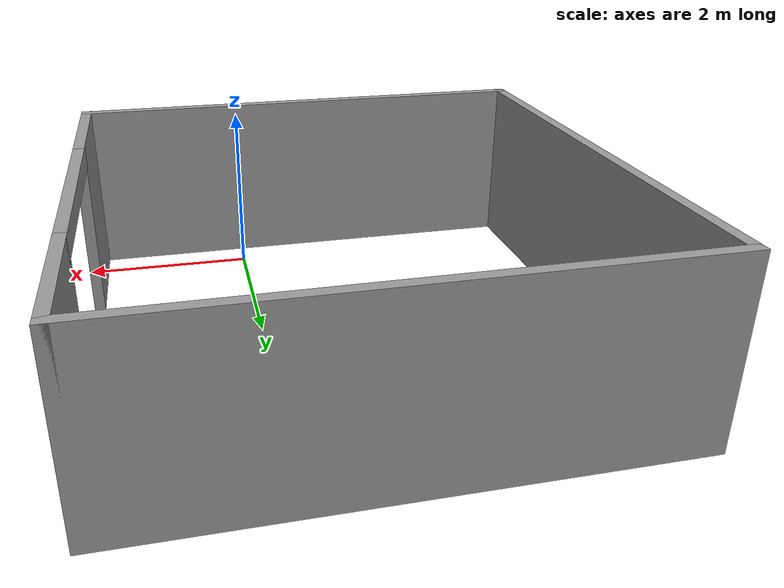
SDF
<?xml version='1.0'?>
<sdf version='1.7'>
  <model name='turtlebot3_uwb_gps'>
    <model name='door'>
      <pose>1.36887 0.501995 1.09478 0 -0 0</pose>
      <link name='Wall_13'>
        <collision name='Wall_13_Collision'>
          <geometry>
            <box>
              <size>3.25 0.15 0.3</size>
            </box>
          </geometry>
          <pose>0 0 0.15 0 -0 0</pose>
        </collision>
        <visual name='Wall_13_Visual'>
          <pose>0 0 0.15 0 -0 0</pose>
          <geometry>
            <box>
              <size>3.25 0.15 0.3</size>
            </box>
          </geometry>
          <material>
            <script>
              <uri>file://media/materials/scripts/gazebo.material</uri>
              <name>Gazebo/Grey</name>
            </script>
            <ambient>1 1 1 1</ambient>
          </material>
          <meta>
            <layer>0</layer>
          </meta>
        </visual>
        <pose>0.6855 0 0 0 -0 -1.5708</pose>
      </link>
      <static>1</static>
    </model>
    <model name='turtlebot3_uwb_gps'>
      <pose>-1.36887 0.481997 -1.10478 0 -0 0</pose>
      <link name='Wall_0'>
        <collision name='Wall_0_Collision'>
          <geometry>
            <box>
              <size>7 0.15 2.5</size>
            </box>
          </geometry>
          <pose>0 0 1.25 0 -0 0</pose>
        </collision>
        <visual name='Wall_0_Visual'>
          <pose>0 0 1.25 0 -0 0</pose>
          <geometry>
            <box>
              <size>7 0.15 2.5</size>
            </box>
          </geometry>
          <material>
            <script>
              <uri>file://media/materials/scripts/gazebo.material</uri>
              <name>Gazebo/Grey</name>
            </script>
            <ambient>1 1 1 1</ambient>
          </material>
          <meta>
            <layer>0</layer>
          </meta>
        </visual>
        <pose>0 -3.425 0 0 -0 0</pose>
      </link>
      <link name='Wall_10'>
        <collision name='Wall_10_Collision'>
          <geometry>
            <box>
              <size>2 0.15 2.5</size>
            </box>
          </geometry>
          <pose>0 0 1.25 0 -0 0</pose>
        </collision>
        <visual name='Wall_10_Visual'>
          <pose>0 0 1.25 0 -0 0</pose>
          <geometry>
            <box>
              <size>2 0.15 2.5</size>
            </box>
          </geometry>
          <material>
            <script>
              <uri>file://media/materials/scripts/gazebo.material</uri>
              <name>Gazebo/Grey</name>
            </script>
            <ambient>1 1 1 1</ambient>
          </material>
          <meta>
            <layer>0</layer>
          </meta>
        </visual>
        <pose>3.425 -2.5 0 0 -0 1.5708</pose>
      </link>
      <link name='Wall_6'>
        <collision name='Wall_6_Collision'>
          <geometry>
            <box>
              <size>7 0.15 2.5</size>
            </box>
          </geometry>
          <pose>0 0 1.25 0 -0 0</pose>
        </collision>
        <visual name='Wall_6_Visual'>
          <pose>0 0 1.25 0 -0 0</pose>
          <geometry>
            <box>
              <size>7 0.15 2.5</size>
            </box>
          </geometry>
          <material>
            <script>
              <uri>file://media/materials/scripts/gazebo.material</uri>
              <name>Gazebo/Grey</name>
            </script>
            <ambient>1 1 1 1</ambient>
          </material>
          <meta>
            <layer>0</layer>
          </meta>
        </visual>
        <pose>-3.425 -0 0 0 -0 1.5708</pose>
      </link>
      <link name='Wall_7'>
        <collision name='Wall_7_Collision'>
          <geometry>
            <box>
              <size>7 0.15 2.5</size>
            </box>
          </geometry>
          <pose>0 0 1.25 0 -0 0</pose>
        </collision>
        <visual name='Wall_7_Visual'>
          <pose>0 0 1.25 0 -0 0</pose>
          <geometry>
            <box>
              <size>7 0.15 2.5</size>
            </box>
          </geometry>
          <material>
            <script>
              <uri>file://media/materials/scripts/gazebo.material</uri>
              <name>Gazebo/Grey</name>
            </script>
            <ambient>1 1 1 1</ambient>
          </material>
          <meta>
            <layer>0</layer>
          </meta>
        </visual>
        <pose>0 3.425 0 0 -0 0</pose>
      </link>
      <link name='Wall_8'>
        <collision name='Wall_8_Collision'>
          <geometry>
            <box>
              <size>2 0.15 2.5</size>
            </box>
          </geometry>
          <pose>0 0 1.25 0 -0 0</pose>
        </collision>
        <visual name='Wall_8_Visual'>
          <pose>0 0 1.25 0 -0 0</pose>
          <geometry>
            <box>
              <size>2 0.15 2.5</size>
            </box>
          </geometry>
          <material>
            <script>
              <uri>file://media/materials/scripts/gazebo.material</uri>
              <name>Gazebo/Grey</name>
            </script>
            <ambient>1 1 1 1</ambient>
          </material>
          <meta>
            <layer>0</layer>
          </meta>
        </visual>
        <pose>3.425 2.5 0 0 -0 -1.5708</pose>
      </link>
      <static>1</static>
    </model>
    <static>0</static>
    <allow_auto_disable>1</allow_auto_disable>
  </model>
</sdf>
